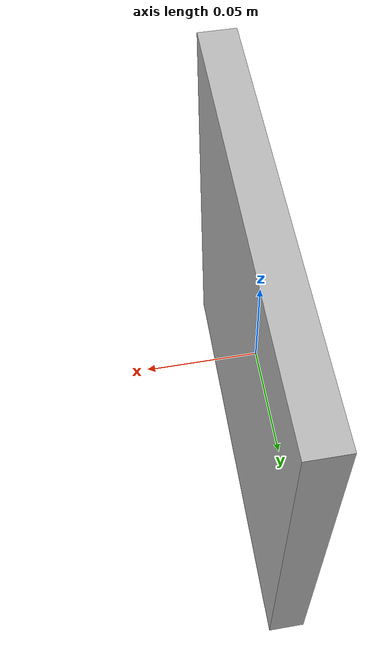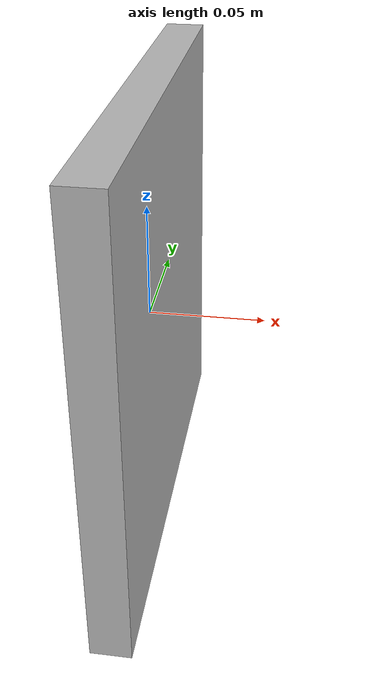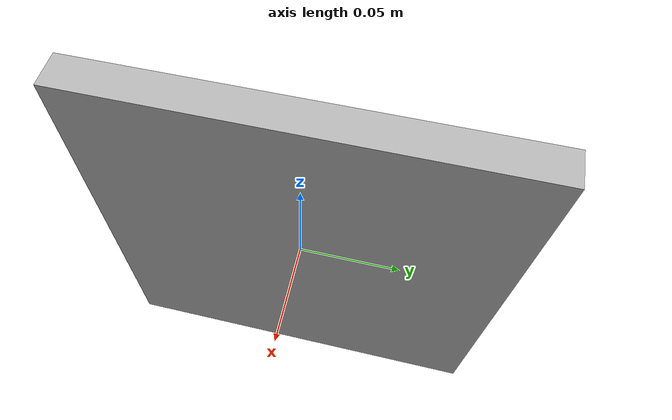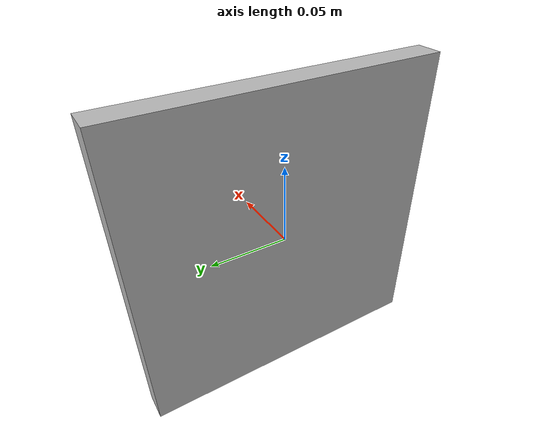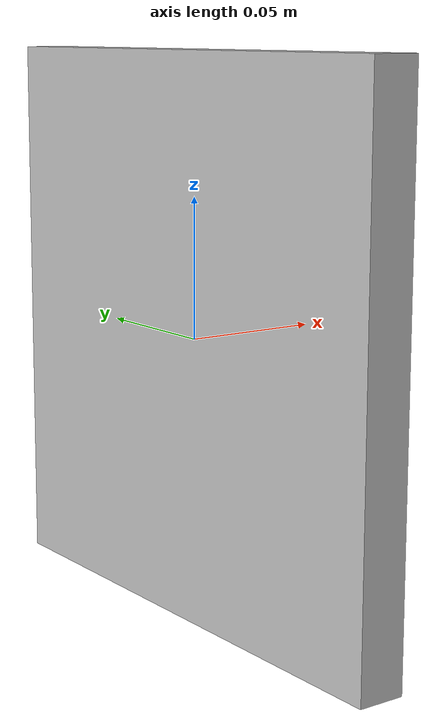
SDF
<?xml version='1.0'?>
<sdf version="1.6">
  <model name="alvar_tile">
    <static>true</static>
    <link name="link">
      <collision name="collision">
        <geometry>
          <box>
            <size>1 1 1</size>
          </box>
        </geometry>
      </collision>
      <visual name="visual">
        <geometry>
          <mesh>
            <scale>0.1 0.1 0.1</scale>
            <uri>model://alvar_tile/alvar_tile.dae</uri>
          </mesh>
        </geometry>
      </visual>
    </link>
  </model>
</sdf>
